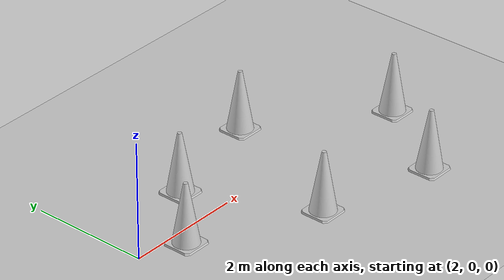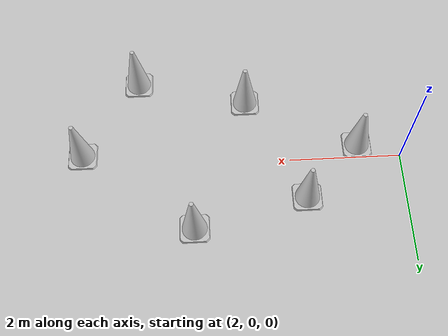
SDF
<?xml version="1.0" ?>
<sdf version="1.6">

  <world name="default">

    <include>
      <uri>model://sun</uri>
    </include>

    <include>
      <uri>model://ground_plane</uri>
    </include>

    <include>
      <name>cone_1</name>
      <uri>model://traffic_cone</uri>
      <pose>2.5 0 0 0 0 0</pose>
    </include>

    <include>
      <name>cone_2</name>
      <uri>model://traffic_cone</uri>
      <pose>3.5 1 0 0 0 0</pose>
    </include>

    <include>
      <name>cone_3</name>
      <uri>model://traffic_cone</uri>
      <pose>4.5 -1 0 0 0 0</pose>
    </include>

    <include>
      <name>cone_4</name>
      <uri>model://traffic_cone</uri>
      <pose>5.5 1.5 0 0 0 0</pose>
    </include>

    <include>
      <name>cone_5</name>
      <uri>model://traffic_cone</uri>
      <pose>6.5 -1.5 0 0 0 0</pose>
    </include>

    <include>
      <name>cone_6</name>
      <uri>model://traffic_cone</uri>
      <pose>7.5 0 0 0 0 0</pose>
    </include>

  </world>

</sdf>

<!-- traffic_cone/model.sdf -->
<sdf version="1.7">
<model name="traffic_cone" canonical_link="node0_link">
  <link name="node0_link">
    <collision name="node0_collision">
      <pose relative_to="node0_link">0.00000 0.00000 0.00000 0.00000 0.00000 0.00000</pose>
      <geometry>
        <mesh>
          <uri>meshes/Body.dae</uri>
          <scale>1.00000 1.00000 1.00000</scale>
        </mesh>
      </geometry>
      <surface>
        <contact><ode>  <max_vel>0.001</max_vel><min_depth>0.01</min_depth><kd>1e15</kd>  </ode></contact>
      </surface>
    </collision>
    <inertial>
      <inertia>
        <ixx>1.94536</ixx>
        <ixy>0.00000</ixy>
        <ixz>0.00544</ixz>
        <iyy>1.94538</iyy>
        <iyz>0.00000</iyz>
        <izz>0.25007</izz>
      </inertia>
      <pose relative_to="node0_link">0.26000 -0.26000 0.30336 0.00000 0.00000 0.00000</pose>
      <mass>10.00000</mass>
    </inertial>
    <visual name="node0">
      <material>
        <diffuse>0.80000 0.80000 0.80000 1.00000</diffuse>
        <specular>0.40000 0.40000 0.40000 0.49804</specular>
        <emissive>0.00000 0.00000 0.00000 1.00000</emissive>
      </material>
      <pose relative_to="node0_link">0.00000 0.00000 0.00000 0.00000 0.00000 0.00000</pose>
      <geometry>
        <mesh>
          <uri>meshes/Body.dae</uri>
          <scale>1.00000 1.00000 1.00000</scale>
        </mesh>
      </geometry>
    </visual>
  </link>
</model>
</sdf>
